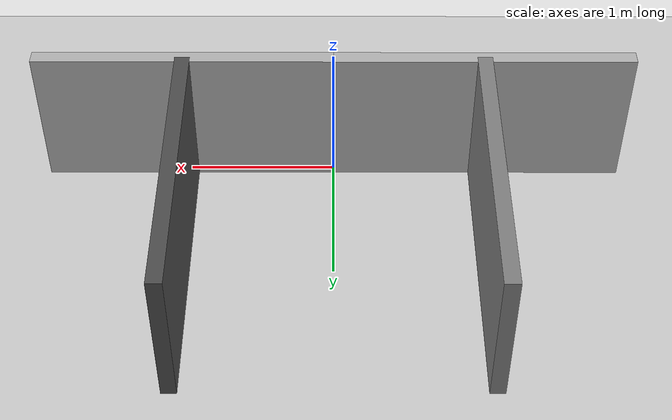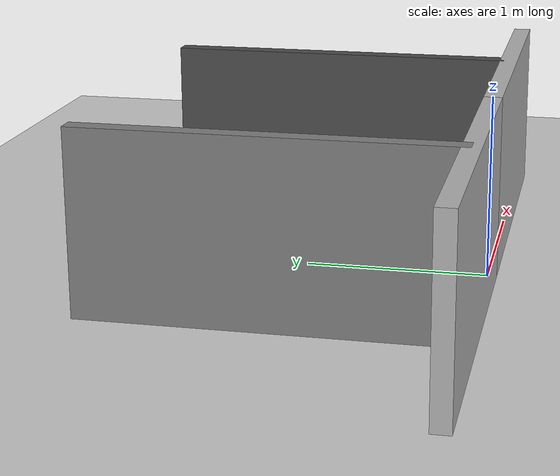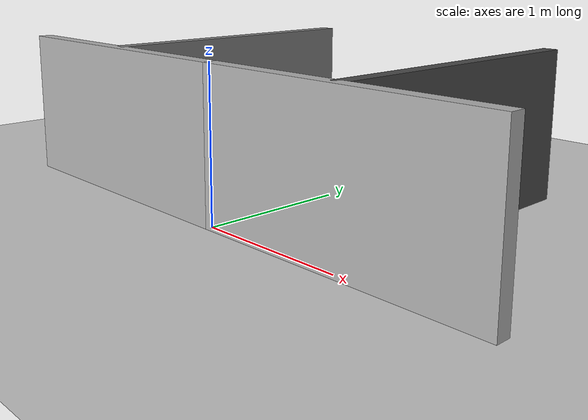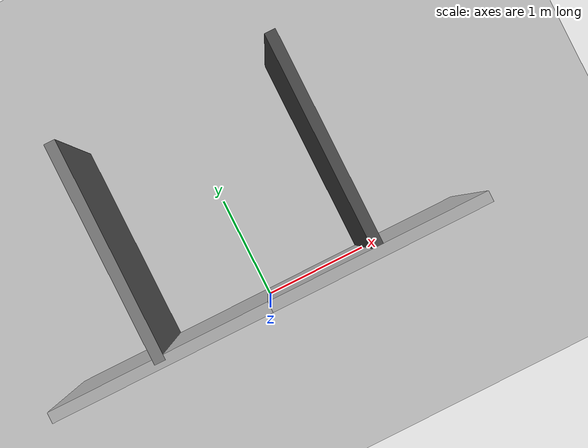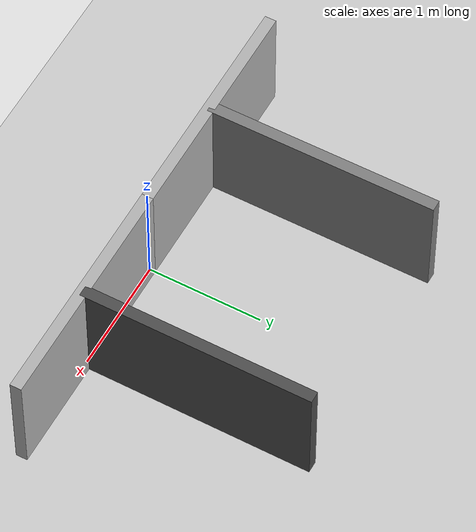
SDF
<sdf version="1.8">
 <world name="my_world">
  <physics name="1ms" type="ignored">
   <max_step_size>0.001</max_step_size>
   <real_time_factor>1.0</real_time_factor>
  </physics>
  <plugin filename="gz-sim-physics-system" name="gz::sim::systems::Physics"/>
  <plugin filename="gz-sim-user-commands-system" name="gz::sim::systems::UserCommands"/>
  <plugin filename="gz-sim-scene-broadcaster-system" name="gz::sim::systems::SceneBroadcaster"/>
  <plugin filename="gz-sim-sensors-system" name="gz::sim::systems::Sensors"/>
  <light type="directional" name="sun">
   <pose>0 0 10 0 0 0</pose>
   <diffuse>0.8 0.8 0.8 1</diffuse>
   <specular>0.2 0.2 0.2 1</specular>
   <attenuation>
    <range>1000</range>
    <constant>0.9</constant>
    <linear>0.01</linear>
    <quadratic>0.001</quadratic>
   </attenuation>
   <direction>-0.5 0.1 -0.9</direction>
  </light>
  <model name="ground_plane">
   <static>true</static>
   <link name="link">
    <collision name="collision">
     <geometry><plane><normal>0 0 1</normal><size>100 100</size></plane></geometry>
    </collision>
    <visual name="visual">
     <geometry><plane><normal>0 0 1</normal><size>100 100</size></plane></geometry>
     <material>
      <ambient>0.8 0.8 0.8 1</ambient>
      <diffuse>0.8 0.8 0.8 1</diffuse>
      <specular>0.8 0.8 0.8 1</specular>
     </material>
    </visual>
   </link>
  </model>
  <model name="wall1">
   <static>true</static>
   <link name="link">
    <collision name="collision"><geometry><box><size>2 0.1 1.0</size></box></geometry></collision>
    <visual name="visual">
     <geometry><box><size>2 0.1 1.0</size></box></geometry>
     <material><ambient>0.7 0.7 0.7 1</ambient></material>
    </visual>
    <pose>1 0 0.5 0 0 0</pose>
   </link>
  </model>
  <model name="wall2">
   <static>true</static>
   <link name="link">
    <collision name="collision"><geometry><box><size>0.1 2 1.0</size></box></geometry></collision>
    <visual name="visual">
     <geometry><box><size>0.1 2 1.0</size></box></geometry>
     <material><ambient>0.5 0.5 0.5 1</ambient></material>
    </visual>
    <pose>-1 1 0.5 0 0 0</pose>
   </link>
  </model>
  <model name="wall3">
   <static>true</static>
   <link name="link">
    <collision name="collision"><geometry><box><size>0.1 2 1.0</size></box></geometry></collision>
    <visual name="visual">
     <geometry><box><size>0.1 2 1.0</size></box></geometry>
     <material><ambient>0.3 0.3 0.3 1</ambient></material>
    </visual>
    <pose>1 1 0.5 0 0 0</pose>
   </link>
  </model>
  <model name="wall4">
   <static>true</static>
   <link name="link">
    <collision name="collision"><geometry><box><size>2 0.1 1.0</size></box></geometry></collision>
    <visual name="visual">
     <geometry><box><size>2 0.1 1.0</size></box></geometry>
     <material><ambient>0.7 0.7 0.7 1</ambient></material>
    </visual>
    <pose>-1 0 0.5 0 0 0</pose>
   </link>
  </model>
 </world>
</sdf>
